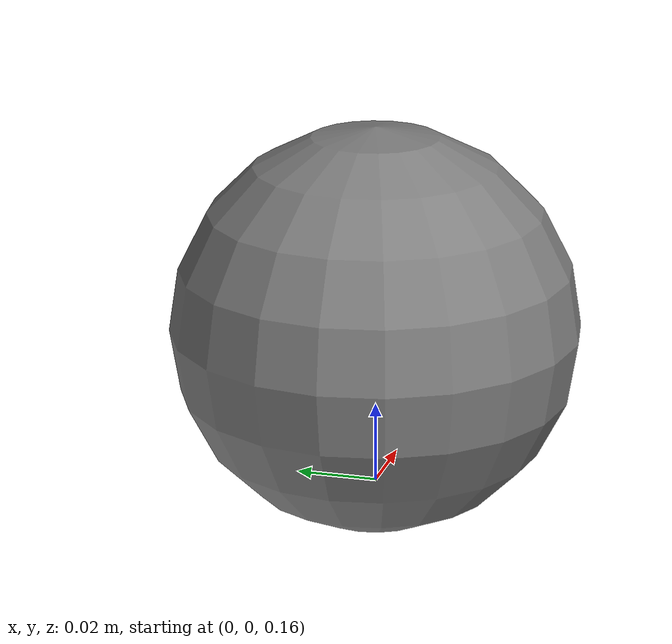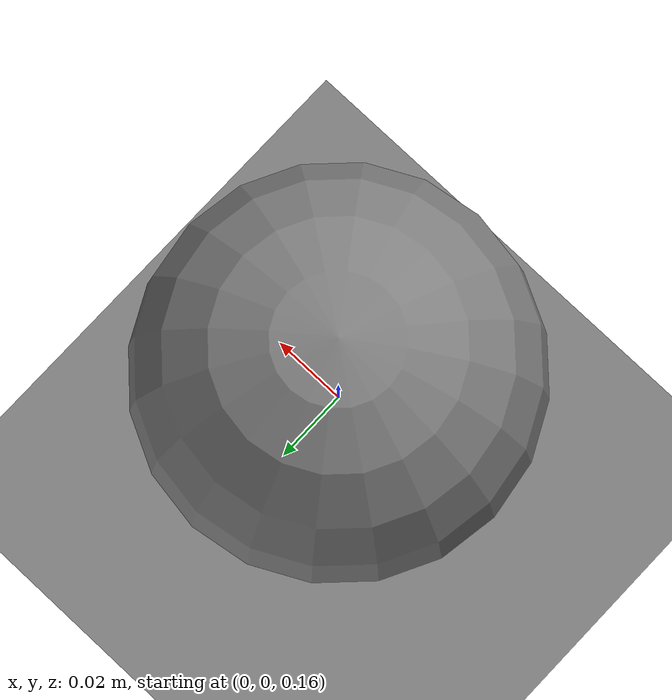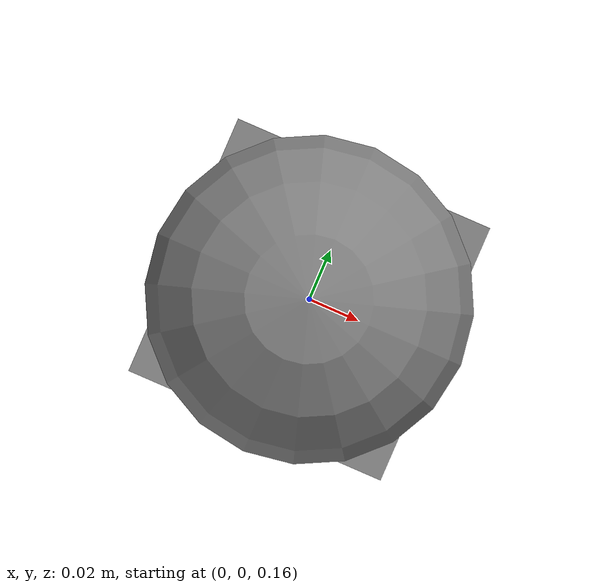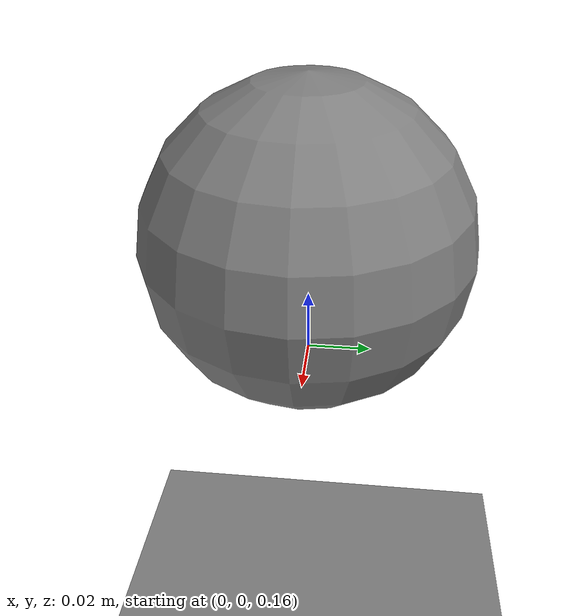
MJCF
<mujoco model="native rigid GPU backend test">
  <option timestep="0.002"/>
  <worldbody>
    <geom name="floor" type="plane" size="1 1 0.1"/>
    <body name="object" pos="0 0 0.2">
      <freejoint name="object:joint"/>
      <geom name="object_geom" type="sphere" size="0.05" mass="1"/>
      <site name="robot0:TS_native_site" type="sphere" size="0.05"/>
    </body>
  </worldbody>
  <sensor>
    <touch name="robot0:TS_native" site="robot0:TS_native_site"/>
  </sensor>
</mujoco>
